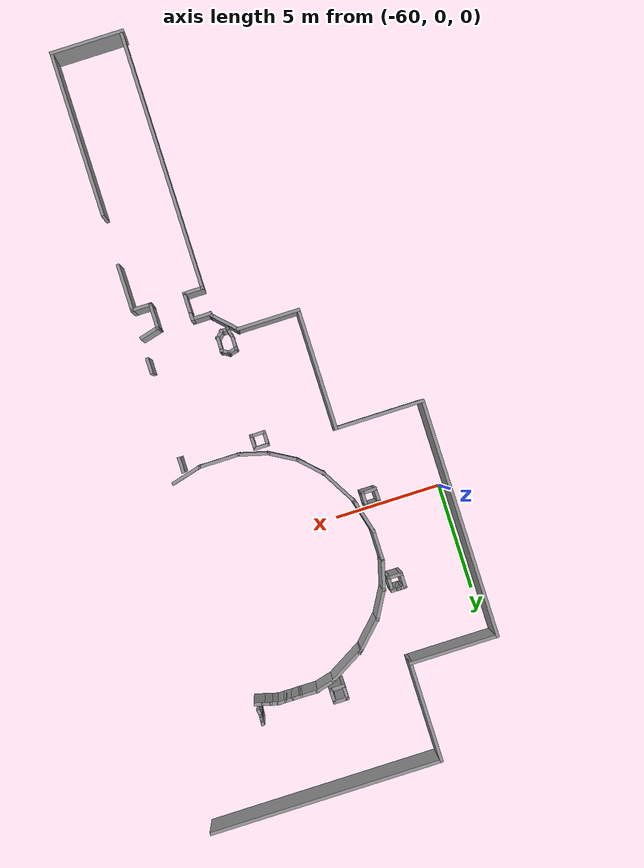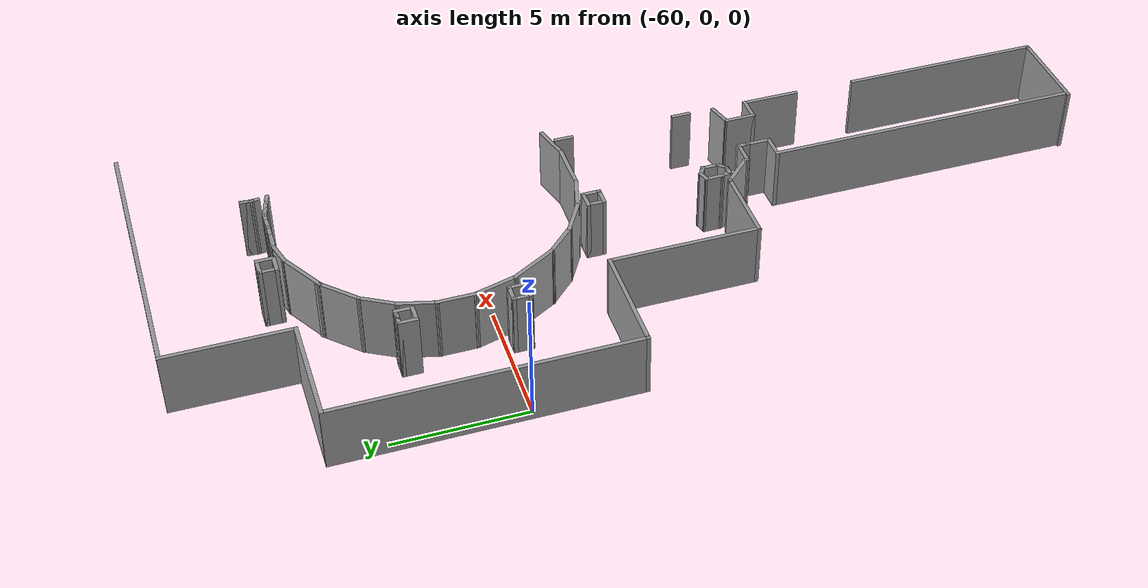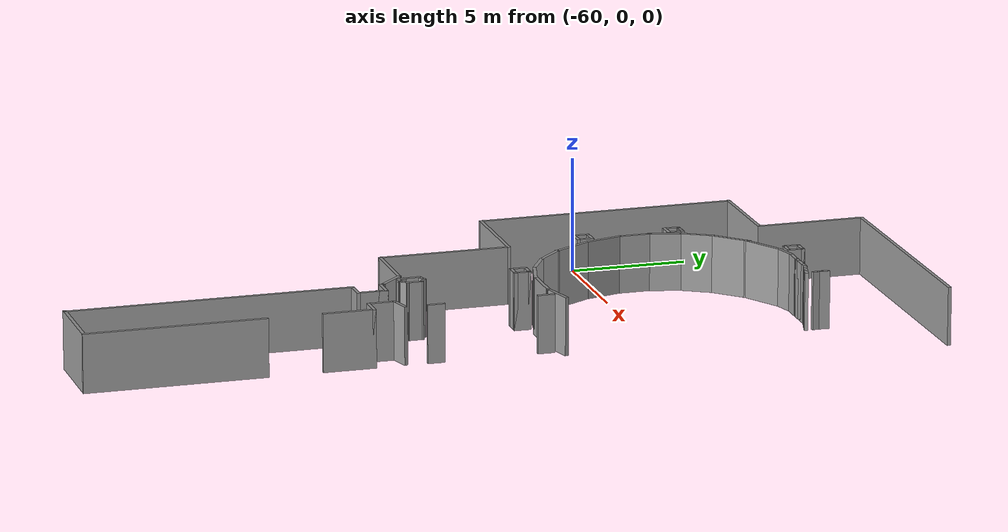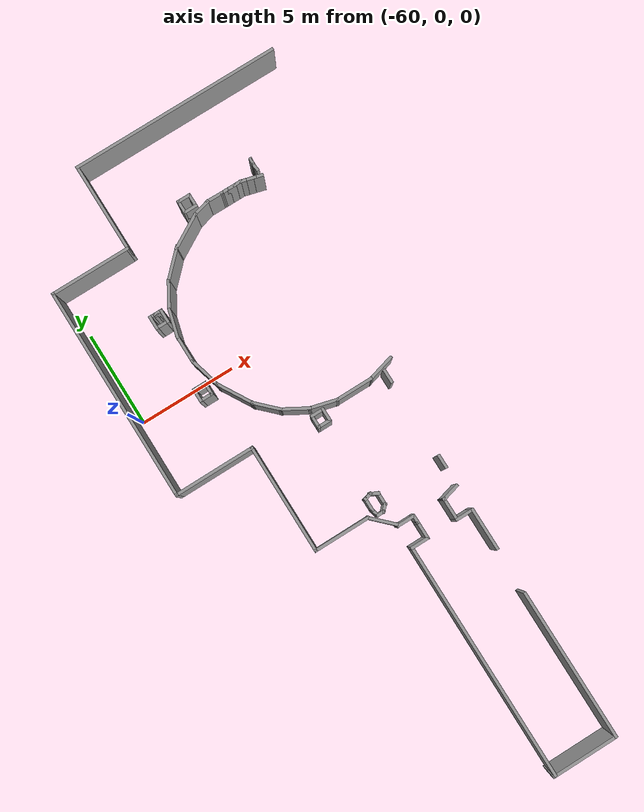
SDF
<sdf version="1.7">
 <model name="TD">
  <pose>-6.31602 -6.69767 0 0 -0 0</pose>
  <link name="Wall_126">
   <collision name="Wall_126_Collision">
    <geometry><box><size>1 0.15 2.5</size></box></geometry>
    <pose>0 0 1.25 0 -0 0</pose>
   </collision>
   <visual name="Wall_126_Visual">
    <pose>0 0 1.25 0 -0 0</pose>
    <geometry><box><size>1 0.15 2.5</size></box></geometry>
    <material>
     <script><uri>file://media/materials/scripts/gazebo.material</uri><name>Gazebo/Grey</name></script>
     <ambient>1 1 1 1</ambient>
    </material>
    <meta><layer>0</layer></meta>
   </visual>
   <pose>-43.1204 -5.15327 0 0 -0 3.14159</pose>
  </link>
  <link name="Wall_127">
   <collision name="Wall_127_Collision">
    <geometry><box><size>1.25 0.15 2.5</size></box></geometry>
    <pose>0 0 1.25 0 -0 0</pose>
   </collision>
   <visual name="Wall_127_Visual">
    <pose>0 0 1.25 0 -0 0</pose>
    <geometry><box><size>1.25 0.15 2.5</size></box></geometry>
    <material>
     <script><uri>file://media/materials/scripts/gazebo.material</uri><name>Gazebo/Grey</name></script>
     <ambient>1 1 1 1</ambient>
    </material>
    <meta><layer>0</layer></meta>
   </visual>
   <pose>-43.5454 -4.60327 0 0 -0 1.5708</pose>
  </link>
  <link name="Wall_139">
   <collision name="Wall_139_Collision">
    <geometry><box><size>1 0.15 2.5</size></box></geometry>
    <pose>0 0 1.25 0 -0 0</pose>
   </collision>
   <visual name="Wall_139_Visual">
    <pose>0 0 1.25 0 -0 0</pose>
    <geometry><box><size>1 0.15 2.5</size></box></geometry>
    <material>
     <script><uri>file://media/materials/scripts/gazebo.material</uri><name>Gazebo/Grey</name></script>
     <ambient>1 1 1 1</ambient>
    </material>
    <meta><layer>0</layer></meta>
   </visual>
   <pose>-43.1349 -3.94327 0 0 -0 0.261799</pose>
  </link>
  <link name="Wall_143">
   <collision name="Wall_143_Collision">
    <geometry><box><size>0.5 0.15 2.5</size></box></geometry>
    <pose>0 0 1.25 0 -0 0</pose>
   </collision>
   <visual name="Wall_143_Visual">
    <pose>0 0 1.25 0 -0 0</pose>
    <geometry><box><size>0.5 0.15 2.5</size></box></geometry>
    <material>
     <script><uri>file://media/materials/scripts/gazebo.material</uri><name>Gazebo/Grey</name></script>
     <ambient>1 1 1 1</ambient>
    </material>
    <meta><layer>0</layer></meta>
   </visual>
   <pose>-44.507 13.7137 0 0 -0 0</pose>
  </link>
  <link name="Wall_145">
   <collision name="Wall_145_Collision">
    <geometry><box><size>0.5 0.15 2.5</size></box></geometry>
    <pose>0 0 1.25 0 -0 0</pose>
   </collision>
   <visual name="Wall_145_Visual">
    <pose>0 0 1.25 0 -0 0</pose>
    <geometry><box><size>0.5 0.15 2.5</size></box></geometry>
    <material>
     <script><uri>file://media/materials/scripts/gazebo.material</uri><name>Gazebo/Grey</name></script>
     <ambient>1 1 1 1</ambient>
    </material>
    <meta><layer>0</layer></meta>
   </visual>
   <pose>-44.157 13.7137 0 0 -0 0</pose>
  </link>
  <link name="Wall_146">
   <collision name="Wall_146_Collision">
    <geometry><box><size>0.5 0.15 2.5</size></box></geometry>
    <pose>0 0 1.25 0 -0 0</pose>
   </collision>
   <visual name="Wall_146_Visual">
    <pose>0 0 1.25 0 -0 0</pose>
    <geometry><box><size>0.5 0.15 2.5</size></box></geometry>
    <material>
     <script><uri>file://media/materials/scripts/gazebo.material</uri><name>Gazebo/Grey</name></script>
     <ambient>1 1 1 1</ambient>
    </material>
    <meta><layer>0</layer></meta>
   </visual>
   <pose>-43.807 13.7137 0 0 -0 0</pose>
  </link>
  <link name="Wall_148">
   <collision name="Wall_148_Collision">
    <geometry><box><size>0.5 0.15 2.5</size></box></geometry>
    <pose>0 0 1.25 0 -0 0</pose>
   </collision>
   <visual name="Wall_148_Visual">
    <pose>0 0 1.25 0 -0 0</pose>
    <geometry><box><size>0.5 0.15 2.5</size></box></geometry>
    <material>
     <script><uri>file://media/materials/scripts/gazebo.material</uri><name>Gazebo/Grey</name></script>
     <ambient>1 1 1 1</ambient>
    </material>
    <meta><layer>0</layer></meta>
   </visual>
   <pose>-43.463 13.6685 0 0 -0 -0.261799</pose>
  </link>
  <link name="Wall_151">
   <collision name="Wall_151_Collision">
    <geometry><box><size>0.5 0.15 2.5</size></box></geometry>
    <pose>0 0 1.25 0 -0 0</pose>
   </collision>
   <visual name="Wall_151_Visual">
    <pose>0 0 1.25 0 -0 0</pose>
    <geometry><box><size>0.5 0.15 2.5</size></box></geometry>
    <material>
     <script><uri>file://media/materials/scripts/gazebo.material</uri><name>Gazebo/Grey</name></script>
     <ambient>1 1 1 1</ambient>
    </material>
    <meta><layer>0</layer></meta>
   </visual>
   <pose>-43.1249 13.5779 0 0 -0 -0.261799</pose>
  </link>
  <link name="Wall_152">
   <collision name="Wall_152_Collision">
    <geometry><box><size>0.5 0.15 2.5</size></box></geometry>
    <pose>0 0 1.25 0 -0 0</pose>
   </collision>
   <visual name="Wall_152_Visual">
    <pose>0 0 1.25 0 -0 0</pose>
    <geometry><box><size>0.5 0.15 2.5</size></box></geometry>
    <material>
     <script><uri>file://media/materials/scripts/gazebo.material</uri><name>Gazebo/Grey</name></script>
     <ambient>1 1 1 1</ambient>
    </material>
    <meta><layer>0</layer></meta>
   </visual>
   <pose>-42.7869 13.4873 0 0 -0 -0.261799</pose>
  </link>
  <link name="Wall_172">
   <collision name="Wall_172_Collision">
    <geometry><box><size>1.5 0.15 2.5</size></box></geometry>
    <pose>0 0 1.25 0 -0 0</pose>
   </collision>
   <visual name="Wall_172_Visual">
    <pose>0 0 1.25 0 -0 0</pose>
    <geometry><box><size>1.5 0.15 2.5</size></box></geometry>
    <material>
     <script><uri>file://media/materials/scripts/gazebo.material</uri><name>Gazebo/Grey</name></script>
     <ambient>1 1 1 1</ambient>
    </material>
    <meta><layer>0</layer></meta>
   </visual>
   <pose>-42.7755 2.67223 0 0 -0 -2.87979</pose>
  </link>
  <link name="Wall_173">
   <collision name="Wall_173_Collision">
    <geometry><box><size>2 0.15 2.5</size></box></geometry>
    <pose>0 0 1.25 0 -0 0</pose>
   </collision>
   <visual name="Wall_173_Visual">
    <pose>0 0 1.25 0 -0 0</pose>
    <geometry><box><size>2 0.15 2.5</size></box></geometry>
    <material>
     <script><uri>file://media/materials/scripts/gazebo.material</uri><name>Gazebo/Grey</name></script>
     <ambient>1 1 1 1</ambient>
    </material>
    <meta><layer>0</layer></meta>
   </visual>
   <pose>-44.3525 2.49753 0 0 -0 3.14159</pose>
  </link>
  <link name="Wall_174">
   <collision name="Wall_174_Collision">
    <geometry><box><size>1.5 0.15 2.5</size></box></geometry>
    <pose>0 0 1.25 0 -0 0</pose>
   </collision>
   <visual name="Wall_174_Visual">
    <pose>0 0 1.25 0 -0 0</pose>
    <geometry><box><size>1.5 0.15 2.5</size></box></geometry>
    <material>
     <script><uri>file://media/materials/scripts/gazebo.material</uri><name>Gazebo/Grey</name></script>
     <ambient>1 1 1 1</ambient>
    </material>
    <meta><layer>0</layer></meta>
   </visual>
   <pose>-45.9295 2.67223 0 0 -0 2.87979</pose>
  </link>
  <link name="Wall_175">
   <collision name="Wall_175_Collision">
    <geometry><box><size>1.5 0.15 2.5</size></box></geometry>
    <pose>0 0 1.25 0 -0 0</pose>
   </collision>
   <visual name="Wall_175_Visual">
    <pose>0 0 1.25 0 -0 0</pose>
    <geometry><box><size>1.5 0.15 2.5</size></box></geometry>
    <material>
     <script><uri>file://media/materials/scripts/gazebo.material</uri><name>Gazebo/Grey</name></script>
     <ambient>1 1 1 1</ambient>
    </material>
    <meta><layer>0</layer></meta>
   </visual>
   <pose>-47.1661 3.18443 0 0 -0 2.61799</pose>
  </link>
  <link name="Wall_176">
   <collision name="Wall_176_Collision">
    <geometry><box><size>1.5 0.15 2.5</size></box></geometry>
    <pose>0 0 1.25 0 -0 0</pose>
   </collision>
   <visual name="Wall_176_Visual">
    <pose>0 0 1.25 0 -0 0</pose>
    <geometry><box><size>1.5 0.15 2.5</size></box></geometry>
    <material>
     <script><uri>file://media/materials/scripts/gazebo.material</uri><name>Gazebo/Grey</name></script>
     <ambient>1 1 1 1</ambient>
    </material>
    <meta><layer>0</layer></meta>
   </visual>
   <pose>-48.228 3.99923 0 0 -0 2.35619</pose>
  </link>
  <link name="Wall_177">
   <collision name="Wall_177_Collision">
    <geometry><box><size>0.15 0.15 2.5</size></box></geometry>
    <pose>0 0 1.25 0 -0 0</pose>
   </collision>
   <visual name="Wall_177_Visual">
    <pose>0 0 1.25 0 -0 0</pose>
    <geometry><box><size>0.15 0.15 2.5</size></box></geometry>
    <material>
     <script><uri>file://media/materials/scripts/gazebo.material</uri><name>Gazebo/Grey</name></script>
     <ambient>1 1 1 1</ambient>
    </material>
    <meta><layer>0</layer></meta>
   </visual>
   <pose>-48.7053 4.47653 0 0 -0 0</pose>
  </link>
  <link name="Wall_179">
   <collision name="Wall_179_Collision">
    <geometry><box><size>2 0.15 2.5</size></box></geometry>
    <pose>0 0 1.25 0 -0 0</pose>
   </collision>
   <visual name="Wall_179_Visual">
    <pose>0 0 1.25 0 -0 0</pose>
    <geometry><box><size>2 0.15 2.5</size></box></geometry>
    <material>
     <script><uri>file://media/materials/scripts/gazebo.material</uri><name>Gazebo/Grey</name></script>
     <ambient>1 1 1 1</ambient>
    </material>
    <meta><layer>0</layer></meta>
   </visual>
   <pose>-49.1678 5.2776 0 0 -0 2.0944</pose>
  </link>
  <link name="Wall_184">
   <collision name="Wall_184_Collision">
    <geometry><box><size>1.75 0.15 2.5</size></box></geometry>
    <pose>0 0 1.25 0 -0 0</pose>
   </collision>
   <visual name="Wall_184_Visual">
    <pose>0 0 1.25 0 -0 0</pose>
    <geometry><box><size>1.75 0.15 2.5</size></box></geometry>
    <material>
     <script><uri>file://media/materials/scripts/gazebo.material</uri><name>Gazebo/Grey</name></script>
     <ambient>1 1 1 1</ambient>
    </material>
    <meta><layer>0</layer></meta>
   </visual>
   <pose>-49.8373 6.85142 0 0 -0 1.8326</pose>
  </link>
  <link name="Wall_187">
   <collision name="Wall_187_Collision">
    <geometry><box><size>1.5 0.15 2.5</size></box></geometry>
    <pose>0 0 1.25 0 -0 0</pose>
   </collision>
   <visual name="Wall_187_Visual">
    <pose>0 0 1.25 0 -0 0</pose>
    <geometry><box><size>1.5 0.15 2.5</size></box></geometry>
    <material>
     <script><uri>file://media/materials/scripts/gazebo.material</uri><name>Gazebo/Grey</name></script>
     <ambient>1 1 1 1</ambient>
    </material>
    <meta><layer>0</layer></meta>
   </visual>
   <pose>-50.0444 8.29916 0 0 -0 1.5708</pose>
  </link>
  <link name="Wall_188">
   <collision name="Wall_188_Collision">
    <geometry><box><size>1.5 0.15 2.5</size></box></geometry>
    <pose>0 0 1.25 0 -0 0</pose>
   </collision>
   <visual name="Wall_188_Visual">
    <pose>0 0 1.25 0 -0 0</pose>
    <geometry><box><size>1.5 0.15 2.5</size></box></geometry>
    <material>
     <script><uri>file://media/materials/scripts/gazebo.material</uri><name>Gazebo/Grey</name></script>
     <ambient>1 1 1 1</ambient>
    </material>
    <meta><layer>0</layer></meta>
   </visual>
   <pose>-49.8697 9.62616 0 0 -0 1.309</pose>
  </link>
  <link name="Wall_189">
   <collision name="Wall_189_Collision">
    <geometry><box><size>1.5 0.15 2.5</size></box></geometry>
    <pose>0 0 1.25 0 -0 0</pose>
   </collision>
   <visual name="Wall_189_Visual">
    <pose>0 0 1.25 0 -0 0</pose>
    <geometry><box><size>1.5 0.15 2.5</size></box></geometry>
    <material>
     <script><uri>file://media/materials/scripts/gazebo.material</uri><name>Gazebo/Grey</name></script>
     <ambient>1 1 1 1</ambient>
    </material>
    <meta><layer>0</layer></meta>
   </visual>
   <pose>-49.3575 10.8627 0 0 -0 1.0472</pose>
  </link>
  <link name="Wall_190">
   <collision name="Wall_190_Collision">
    <geometry><box><size>1.75 0.15 2.5</size></box></geometry>
    <pose>0 0 1.25 0 -0 0</pose>
   </collision>
   <visual name="Wall_190_Visual">
    <pose>0 0 1.25 0 -0 0</pose>
    <geometry><box><size>1.75 0.15 2.5</size></box></geometry>
    <material>
     <script><uri>file://media/materials/scripts/gazebo.material</uri><name>Gazebo/Grey</name></script>
     <ambient>1 1 1 1</ambient>
    </material>
    <meta><layer>0</layer></meta>
   </visual>
   <pose>-48.4543 12.013 0 0 -0 0.785398</pose>
  </link>
  <link name="Wall_191">
   <collision name="Wall_191_Collision">
    <geometry><box><size>0.25 0.15 2.5</size></box></geometry>
    <pose>0 0 1.25 0 -0 0</pose>
   </collision>
   <visual name="Wall_191_Visual">
    <pose>0 0 1.25 0 -0 0</pose>
    <geometry><box><size>0.25 0.15 2.5</size></box></geometry>
    <material>
     <script><uri>file://media/materials/scripts/gazebo.material</uri><name>Gazebo/Grey</name></script>
     <ambient>1 1 1 1</ambient>
    </material>
    <meta><layer>0</layer></meta>
   </visual>
   <pose>-47.8532 12.614 0 0 -0 0.785398</pose>
  </link>
  <link name="Wall_193">
   <collision name="Wall_193_Collision">
    <geometry><box><size>2 0.15 2.5</size></box></geometry>
    <pose>0 0 1.25 0 -0 0</pose>
   </collision>
   <visual name="Wall_193_Visual">
    <pose>0 0 1.25 0 -0 0</pose>
    <geometry><box><size>2 0.15 2.5</size></box></geometry>
    <material>
     <script><uri>file://media/materials/scripts/gazebo.material</uri><name>Gazebo/Grey</name></script>
     <ambient>1 1 1 1</ambient>
    </material>
    <meta><layer>0</layer></meta>
   </visual>
   <pose>-47.0875 13.0412 0 0 -0 0.523599</pose>
  </link>
  <link name="Wall_194">
   <collision name="Wall_194_Collision">
    <geometry><box><size>1 0.15 2.5</size></box></geometry>
    <pose>0 0 1.25 0 -0 0</pose>
   </collision>
   <visual name="Wall_194_Visual">
    <pose>0 0 1.25 0 -0 0</pose>
    <geometry><box><size>1 0.15 2.5</size></box></geometry>
    <material>
     <script><uri>file://media/materials/scripts/gazebo.material</uri><name>Gazebo/Grey</name></script>
     <ambient>1 1 1 1</ambient>
    </material>
    <meta><layer>0</layer></meta>
   </visual>
   <pose>-45.8759 13.6137 0 0 -0 0.261799</pose>
  </link>
  <link name="Wall_195">
   <collision name="Wall_195_Collision">
    <geometry><box><size>0.933434 0.15 2.5</size></box></geometry>
    <pose>0 0 1.25 0 -0 0</pose>
   </collision>
   <visual name="Wall_195_Visual">
    <pose>0 0 1.25 0 -0 0</pose>
    <geometry><box><size>0.933434 0.15 2.5</size></box></geometry>
    <material>
     <script><uri>file://media/materials/scripts/gazebo.material</uri><name>Gazebo/Grey</name></script>
     <ambient>1 1 1 1</ambient>
    </material>
    <meta><layer>0</layer></meta>
   </visual>
   <pose>-45.0737 13.7187 0 0 -0 -0.012646</pose>
  </link>
  <link name="Wall_196">
   <collision name="Wall_196_Collision">
    <geometry><box><size>0.5 0.15 2.5</size></box></geometry>
    <pose>0 0 1.25 0 -0 0</pose>
   </collision>
   <visual name="Wall_196_Visual">
    <pose>0 0 1.25 0 -0 0</pose>
    <geometry><box><size>0.5 0.15 2.5</size></box></geometry>
    <material>
     <script><uri>file://media/materials/scripts/gazebo.material</uri><name>Gazebo/Grey</name></script>
     <ambient>1 1 1 1</ambient>
    </material>
    <meta><layer>0</layer></meta>
   </visual>
   <pose>-44.507 13.7137 0 0 -0 0</pose>
  </link>
  <link name="Wall_198">
   <collision name="Wall_198_Collision">
    <geometry><box><size>0.25 0.15 2.5</size></box></geometry>
    <pose>0 0 1.25 0 -0 0</pose>
   </collision>
   <visual name="Wall_198_Visual">
    <pose>0 0 1.25 0 -0 0</pose>
    <geometry><box><size>0.25 0.15 2.5</size></box></geometry>
    <material>
     <script><uri>file://media/materials/scripts/gazebo.material</uri><name>Gazebo/Grey</name></script>
     <ambient>1 1 1 1</ambient>
    </material>
    <meta><layer>0</layer></meta>
   </visual>
   <pose>-50.3432 10.4349 0 0 -0 0</pose>
  </link>
  <link name="Wall_20">
   <collision name="Wall_20_Collision">
    <geometry><box><size>3.5 0.15 2.5</size></box></geometry>
    <pose>0 0 1.25 0 -0 0</pose>
   </collision>
   <visual name="Wall_20_Visual">
    <pose>0 0 1.25 0 -0 0</pose>
    <geometry><box><size>3.5 0.15 2.5</size></box></geometry>
    <material>
     <script><uri>file://media/materials/scripts/gazebo.material</uri><name>Gazebo/Grey</name></script>
     <ambient>1 1 1 1</ambient>
    </material>
    <meta><layer>0</layer></meta>
   </visual>
   <pose>-44.3999 -17.2776 0 0 -0 0</pose>
  </link>
  <link name="Wall_201">
   <collision name="Wall_201_Collision">
    <geometry><box><size>0.5 0.15 2.5</size></box></geometry>
    <pose>0 0 1.25 0 -0 0</pose>
   </collision>
   <visual name="Wall_201_Visual">
    <pose>0 0 1.25 0 -0 0</pose>
    <geometry><box><size>0.5 0.15 2.5</size></box></geometry>
    <material>
     <script><uri>file://media/materials/scripts/gazebo.material</uri><name>Gazebo/Grey</name></script>
     <ambient>1 1 1 1</ambient>
    </material>
    <meta><layer>0</layer></meta>
   </visual>
   <pose>-50.2182 10.4349 0 0 -0 0</pose>
  </link>
  <link name="Wall_203">
   <collision name="Wall_203_Collision">
    <geometry><box><size>0.75 0.15 2.5</size></box></geometry>
    <pose>0 0 1.25 0 -0 0</pose>
   </collision>
   <visual name="Wall_203_Visual">
    <pose>0 0 1.25 0 -0 0</pose>
    <geometry><box><size>0.75 0.15 2.5</size></box></geometry>
    <material>
     <script><uri>file://media/materials/scripts/gazebo.material</uri><name>Gazebo/Grey</name></script>
     <ambient>1 1 1 1</ambient>
    </material>
    <meta><layer>0</layer></meta>
   </visual>
   <pose>-50.0433 10.1349 0 0 -0 -1.5708</pose>
  </link>
  <link name="Wall_205">
   <collision name="Wall_205_Collision">
    <geometry><box><size>0.75 0.15 2.5</size></box></geometry>
    <pose>0 0 1.25 0 -0 0</pose>
   </collision>
   <visual name="Wall_205_Visual">
    <pose>0 0 1.25 0 -0 0</pose>
    <geometry><box><size>0.75 0.15 2.5</size></box></geometry>
    <material>
     <script><uri>file://media/materials/scripts/gazebo.material</uri><name>Gazebo/Grey</name></script>
     <ambient>1 1 1 1</ambient>
    </material>
    <meta><layer>0</layer></meta>
   </visual>
   <pose>-50.3432 9.83493 0 0 -0 3.14159</pose>
  </link>
  <link name="Wall_206">
   <collision name="Wall_206_Collision">
    <geometry><box><size>0.75 0.15 2.5</size></box></geometry>
    <pose>0 0 1.25 0 -0 0</pose>
   </collision>
   <visual name="Wall_206_Visual">
    <pose>0 0 1.25 0 -0 0</pose>
    <geometry><box><size>0.75 0.15 2.5</size></box></geometry>
    <material>
     <script><uri>file://media/materials/scripts/gazebo.material</uri><name>Gazebo/Grey</name></script>
     <ambient>1 1 1 1</ambient>
    </material>
    <meta><layer>0</layer></meta>
   </visual>
   <pose>-50.6433 10.1349 0 0 -0 1.5708</pose>
  </link>
  <link name="Wall_207">
   <collision name="Wall_207_Collision">
    <geometry><box><size>0.4 0.15 2.5</size></box></geometry>
    <pose>0 0 1.25 0 -0 0</pose>
   </collision>
   <visual name="Wall_207_Visual">
    <pose>0 0 1.25 0 -0 0</pose>
    <geometry><box><size>0.4 0.15 2.5</size></box></geometry>
    <material>
     <script><uri>file://media/materials/scripts/gazebo.material</uri><name>Gazebo/Grey</name></script>
     <ambient>1 1 1 1</ambient>
    </material>
    <meta><layer>0</layer></meta>
   </visual>
   <pose>-50.5183 10.4349 0 0 -0 0</pose>
  </link>
  <link name="Wall_208">
   <collision name="Wall_208_Collision">
    <geometry><box><size>0.16 0.15 2.5</size></box></geometry>
    <pose>0 0 1.25 0 -0 0</pose>
   </collision>
   <visual name="Wall_208_Visual">
    <pose>0 0 1.25 0 -0 0</pose>
    <geometry><box><size>0.16 0.15 2.5</size></box></geometry>
    <material>
     <script><uri>file://media/materials/scripts/gazebo.material</uri><name>Gazebo/Grey</name></script>
     <ambient>1 1 1 1</ambient>
    </material>
    <meta><layer>0</layer></meta>
   </visual>
   <pose>-50.3883 10.4349 0 0 -0 0</pose>
  </link>
  <link name="Wall_210">
   <collision name="Wall_210_Collision">
    <geometry><box><size>0.75 0.15 2.5</size></box></geometry>
    <pose>0 0 1.25 0 -0 0</pose>
   </collision>
   <visual name="Wall_210_Visual">
    <pose>0 0 1.25 0 -0 0</pose>
    <geometry><box><size>0.75 0.15 2.5</size></box></geometry>
    <material>
     <script><uri>file://media/materials/scripts/gazebo.material</uri><name>Gazebo/Grey</name></script>
     <ambient>1 1 1 1</ambient>
    </material>
    <meta><layer>0</layer></meta>
   </visual>
   <pose>-46.6256 -2.40991 0 0 -0 1.5708</pose>
  </link>
  <link name="Wall_211">
   <collision name="Wall_211_Collision">
    <geometry><box><size>0.5 0.15 2.5</size></box></geometry>
    <pose>0 0 1.25 0 -0 0</pose>
   </collision>
   <visual name="Wall_211_Visual">
    <pose>0 0 1.25 0 -0 0</pose>
    <geometry><box><size>0.5 0.15 2.5</size></box></geometry>
    <material>
     <script><uri>file://media/materials/scripts/gazebo.material</uri><name>Gazebo/Grey</name></script>
     <ambient>1 1 1 1</ambient>
    </material>
    <meta><layer>0</layer></meta>
   </visual>
   <pose>-46.4566 -2.06461 0 0 -0 0.261799</pose>
  </link>
  <link name="Wall_212">
   <collision name="Wall_212_Collision">
    <geometry><box><size>0.5 0.15 2.5</size></box></geometry>
    <pose>0 0 1.25 0 -0 0</pose>
   </collision>
   <visual name="Wall_212_Visual">
    <pose>0 0 1.25 0 -0 0</pose>
    <geometry><box><size>0.5 0.15 2.5</size></box></geometry>
    <material>
     <script><uri>file://media/materials/scripts/gazebo.material</uri><name>Gazebo/Grey</name></script>
     <ambient>1 1 1 1</ambient>
    </material>
    <meta><layer>0</layer></meta>
   </visual>
   <pose>-46.136 -2.10682 0 0 -0 -0.523599</pose>
  </link>
  <link name="Wall_214">
   <collision name="Wall_214_Collision">
    <geometry><box><size>0.75 0.15 2.5</size></box></geometry>
    <pose>0 0 1.25 0 -0 0</pose>
   </collision>
   <visual name="Wall_214_Visual">
    <pose>0 0 1.25 0 -0 0</pose>
    <geometry><box><size>0.75 0.15 2.5</size></box></geometry>
    <material>
     <script><uri>file://media/materials/scripts/gazebo.material</uri><name>Gazebo/Grey</name></script>
     <ambient>1 1 1 1</ambient>
    </material>
    <meta><layer>0</layer></meta>
   </visual>
   <pose>-45.9844 -2.49432 0 0 -0 -1.5708</pose>
  </link>
  <link name="Wall_215">
   <collision name="Wall_215_Collision">
    <geometry><box><size>0.5 0.15 2.5</size></box></geometry>
    <pose>0 0 1.25 0 -0 0</pose>
   </collision>
   <visual name="Wall_215_Visual">
    <pose>0 0 1.25 0 -0 0</pose>
    <geometry><box><size>0.5 0.15 2.5</size></box></geometry>
    <material>
     <script><uri>file://media/materials/scripts/gazebo.material</uri><name>Gazebo/Grey</name></script>
     <ambient>1 1 1 1</ambient>
    </material>
    <meta><layer>0</layer></meta>
   </visual>
   <pose>-46.1082 -2.91806 0 0 -0 -2.35619</pose>
  </link>
  <link name="Wall_216">
   <collision name="Wall_216_Collision">
    <geometry><box><size>0.15 0.15 2.5</size></box></geometry>
    <pose>0 0 1.25 0 -0 0</pose>
   </collision>
   <visual name="Wall_216_Visual">
    <pose>0 0 1.25 0 -0 0</pose>
    <geometry><box><size>0.15 0.15 2.5</size></box></geometry>
    <material>
     <script><uri>file://media/materials/scripts/gazebo.material</uri><name>Gazebo/Grey</name></script>
     <ambient>1 1 1 1</ambient>
    </material>
    <meta><layer>0</layer></meta>
   </visual>
   <pose>-46.2319 -3.04181 0 0 -0 0</pose>
  </link>
  <link name="Wall_218">
   <collision name="Wall_218_Collision">
    <geometry><box><size>0.5 0.15 2.5</size></box></geometry>
    <pose>0 0 1.25 0 -0 0</pose>
   </collision>
   <visual name="Wall_218_Visual">
    <pose>0 0 1.25 0 -0 0</pose>
    <geometry><box><size>0.5 0.15 2.5</size></box></geometry>
    <material>
     <script><uri>file://media/materials/scripts/gazebo.material</uri><name>Gazebo/Grey</name></script>
     <ambient>1 1 1 1</ambient>
    </material>
    <meta><layer>0</layer></meta>
   </visual>
   <pose>-46.5803 -2.87894 0 0 -0 -1.309</pose>
  </link>
  <link name="Wall_219">
   <collision name="Wall_219_Collision">
    <geometry><box><size>0.453172 0.15 2.5</size></box></geometry>
    <pose>0 0 1.25 0 -0 0</pose>
   </collision>
   <visual name="Wall_219_Visual">
    <pose>0 0 1.25 0 -0 0</pose>
    <geometry><box><size>0.453172 0.15 2.5</size></box></geometry>
    <material>
     <script><uri>file://media/materials/scripts/gazebo.material</uri><name>Gazebo/Grey</name></script>
     <ambient>1 1 1 1</ambient>
    </material>
    <meta><layer>0</layer></meta>
   </visual>
   <pose>-46.3835 -3.04489 0 0 -0 0.020364</pose>
  </link>
  <link name="Wall_221">
   <collision name="Wall_221_Collision">
    <geometry><box><size>0.75 0.15 2.5</size></box></geometry>
    <pose>0 0 1.25 0 -0 0</pose>
   </collision>
   <visual name="Wall_221_Visual">
    <pose>0 0 1.25 0 -0 0</pose>
    <geometry><box><size>0.75 0.15 2.5</size></box></geometry>
    <material>
     <script><uri>file://media/materials/scripts/gazebo.material</uri><name>Gazebo/Grey</name></script>
     <ambient>1 1 1 1</ambient>
    </material>
    <meta><layer>0</layer></meta>
   </visual>
   <pose>-42.6713 -2.53381 0 0 -0 -1.5708</pose>
  </link>
  <link name="Wall_23">
   <collision name="Wall_23_Collision">
    <geometry><box><size>12.25 0.15 2.5</size></box></geometry>
    <pose>0 0 1.25 0 -0 0</pose>
   </collision>
   <visual name="Wall_23_Visual">
    <pose>0 0 1.25 0 -0 0</pose>
    <geometry><box><size>12.25 0.15 2.5</size></box></geometry>
    <material>
     <script><uri>file://media/materials/scripts/gazebo.material</uri><name>Gazebo/Grey</name></script>
     <ambient>1 1 1 1</ambient>
    </material>
    <meta><layer>0</layer></meta>
   </visual>
   <pose>-46.0022 -11.2033 0 0 -0 -1.5708</pose>
  </link>
  <link name="Wall_230">
   <collision name="Wall_230_Collision">
    <geometry><box><size>0.75 0.15 2.5</size></box></geometry>
    <pose>0 0 1.25 0 -0 0</pose>
   </collision>
   <visual name="Wall_230_Visual">
    <pose>0 0 1.25 0 -0 0</pose>
    <geometry><box><size>0.75 0.15 2.5</size></box></geometry>
    <material>
     <script><uri>file://media/materials/scripts/gazebo.material</uri><name>Gazebo/Grey</name></script>
     <ambient>1 1 1 1</ambient>
    </material>
    <meta><layer>0</layer></meta>
   </visual>
   <pose>-50.3891 6.43349 0 0 -0 0</pose>
  </link>
  <link name="Wall_231">
   <collision name="Wall_231_Collision">
    <geometry><box><size>0.75 0.15 2.5</size></box></geometry>
    <pose>0 0 1.25 0 -0 0</pose>
   </collision>
   <visual name="Wall_231_Visual">
    <pose>0 0 1.25 0 -0 0</pose>
    <geometry><box><size>0.75 0.15 2.5</size></box></geometry>
    <material>
     <script><uri>file://media/materials/scripts/gazebo.material</uri><name>Gazebo/Grey</name></script>
     <ambient>1 1 1 1</ambient>
    </material>
    <meta><layer>0</layer></meta>
   </visual>
   <pose>-50.0891 6.13349 0 0 -0 -1.5708</pose>
  </link>
  <link name="Wall_232">
   <collision name="Wall_232_Collision">
    <geometry><box><size>0.75 0.15 2.5</size></box></geometry>
    <pose>0 0 1.25 0 -0 0</pose>
   </collision>
   <visual name="Wall_232_Visual">
    <pose>0 0 1.25 0 -0 0</pose>
    <geometry><box><size>0.75 0.15 2.5</size></box></geometry>
    <material>
     <script><uri>file://media/materials/scripts/gazebo.material</uri><name>Gazebo/Grey</name></script>
     <ambient>1 1 1 1</ambient>
    </material>
    <meta><layer>0</layer></meta>
   </visual>
   <pose>-50.3891 5.83349 0 0 -0 3.14159</pose>
  </link>
  <link name="Wall_233">
   <collision name="Wall_233_Collision">
    <geometry><box><size>0.75 0.15 2.5</size></box></geometry>
    <pose>0 0 1.25 0 -0 0</pose>
   </collision>
   <visual name="Wall_233_Visual">
    <pose>0 0 1.25 0 -0 0</pose>
    <geometry><box><size>0.75 0.15 2.5</size></box></geometry>
    <material>
     <script><uri>file://media/materials/scripts/gazebo.material</uri><name>Gazebo/Grey</name></script>
     <ambient>1 1 1 1</ambient>
    </material>
    <meta><layer>0</layer></meta>
   </visual>
   <pose>-50.6891 6.13349 0 0 -0 1.5708</pose>
  </link>
  <link name="Wall_234">
   <collision name="Wall_234_Collision">
    <geometry><box><size>0.16 0.15 2.5</size></box></geometry>
    <pose>0 0 1.25 0 -0 0</pose>
   </collision>
   <visual name="Wall_234_Visual">
    <pose>0 0 1.25 0 -0 0</pose>
    <geometry><box><size>0.16 0.15 2.5</size></box></geometry>
    <material>
     <script><uri>file://media/materials/scripts/gazebo.material</uri><name>Gazebo/Grey</name></script>
     <ambient>1 1 1 1</ambient>
    </material>
    <meta><layer>0</layer></meta>
   </visual>
   <pose>-50.6841 6.43349 0 0 -0 0</pose>
  </link>
  <link name="Wall_236">
   <collision name="Wall_236_Collision">
    <geometry><box><size>0.75 0.15 2.5</size></box></geometry>
    <pose>0 0 1.25 0 -0 0</pose>
   </collision>
   <visual name="Wall_236_Visual">
    <pose>0 0 1.25 0 -0 0</pose>
    <geometry><box><size>0.75 0.15 2.5</size></box></geometry>
    <material>
     <script><uri>file://media/materials/scripts/gazebo.material</uri><name>Gazebo/Grey</name></script>
     <ambient>1 1 1 1</ambient>
    </material>
    <meta><layer>0</layer></meta>
   </visual>
   <pose>-46.3425 14.4402 0 0 -0 0</pose>
  </link>
  <link name="Wall_237">
   <collision name="Wall_237_Collision">
    <geometry><box><size>0.75 0.15 2.5</size></box></geometry>
    <pose>0 0 1.25 0 -0 0</pose>
   </collision>
   <visual name="Wall_237_Visual">
    <pose>0 0 1.25 0 -0 0</pose>
    <geometry><box><size>0.75 0.15 2.5</size></box></geometry>
    <material>
     <script><uri>file://media/materials/scripts/gazebo.material</uri><name>Gazebo/Grey</name></script>
     <ambient>1 1 1 1</ambient>
    </material>
    <meta><layer>0</layer></meta>
   </visual>
   <pose>-46.0425 14.1402 0 0 -0 -1.5708</pose>
  </link>
  <link name="Wall_238">
   <collision name="Wall_238_Collision">
    <geometry><box><size>0.75 0.15 2.5</size></box></geometry>
    <pose>0 0 1.25 0 -0 0</pose>
   </collision>
   <visual name="Wall_238_Visual">
    <pose>0 0 1.25 0 -0 0</pose>
    <geometry><box><size>0.75 0.15 2.5</size></box></geometry>
    <material>
     <script><uri>file://media/materials/scripts/gazebo.material</uri><name>Gazebo/Grey</name></script>
     <ambient>1 1 1 1</ambient>
    </material>
    <meta><layer>0</layer></meta>
   </visual>
   <pose>-46.3425 13.8402 0 0 -0 3.14159</pose>
  </link>
  <link name="Wall_239">
   <collision name="Wall_239_Collision">
    <geometry><box><size>0.75 0.15 2.5</size></box></geometry>
    <pose>0 0 1.25 0 -0 0</pose>
   </collision>
   <visual name="Wall_239_Visual">
    <pose>0 0 1.25 0 -0 0</pose>
    <geometry><box><size>0.75 0.15 2.5</size></box></geometry>
    <material>
     <script><uri>file://media/materials/scripts/gazebo.material</uri><name>Gazebo/Grey</name></script>
     <ambient>1 1 1 1</ambient>
    </material>
    <meta><layer>0</layer></meta>
   </visual>
   <pose>-46.6425 14.1402 0 0 -0 1.5708</pose>
  </link>
  <link name="Wall_24">
   <collision name="Wall_24_Collision">
    <geometry><box><size>0.15 0.15 2.5</size></box></geometry>
    <pose>0 0 1.25 0 -0 0</pose>
   </collision>
   <visual name="Wall_24_Visual">
    <pose>0 0 1.25 0 -0 0</pose>
    <geometry><box><size>0.15 0.15 2.5</size></box></geometry>
    <material>
     <script><uri>file://media/materials/scripts/gazebo.material</uri><name>Gazebo/Grey</name></script>
     <ambient>1 1 1 1</ambient>
    </material>
    <meta><layer>0</layer></meta>
   </visual>
   <pose>-46.0022 -17.2533 0 0 -0 0</pose>
  </link>
  <link name="Wall_240">
   <collision name="Wall_240_Collision">
    <geometry><box><size>0.16 0.15 2.5</size></box></geometry>
    <pose>0 0 1.25 0 -0 0</pose>
   </collision>
   <visual name="Wall_240_Visual">
    <pose>0 0 1.25 0 -0 0</pose>
    <geometry><box><size>0.16 0.15 2.5</size></box></geometry>
    <material>
     <script><uri>file://media/materials/scripts/gazebo.material</uri><name>Gazebo/Grey</name></script>
     <ambient>1 1 1 1</ambient>
    </material>
    <meta><layer>0</layer></meta>
   </visual>
   <pose>-46.6375 14.4402 0 0 -0 0</pose>
  </link>
  <link name="Wall_250">
   <collision name="Wall_250_Collision">
    <geometry><box><size>0.370924 0.15 2.5</size></box></geometry>
    <pose>0 0 1.25 0 -0 0</pose>
   </collision>
   <visual name="Wall_250_Visual">
    <pose>0 0 1.25 0 -0 0</pose>
    <geometry><box><size>0.370924 0.15 2.5</size></box></geometry>
    <material>
     <script><uri>file://media/materials/scripts/gazebo.material</uri><name>Gazebo/Grey</name></script>
     <ambient>1 1 1 1</ambient>
    </material>
    <meta><layer>0</layer></meta>
   </visual>
   <pose>-42.6774 13.8981 0 0 -0 1.68232</pose>
  </link>
  <link name="Wall_251">
   <collision name="Wall_251_Collision">
    <geometry><box><size>0.531242 0.15 2.5</size></box></geometry>
    <pose>0 0 1.25 0 -0 0</pose>
   </collision>
   <visual name="Wall_251_Visual">
    <pose>0 0 1.25 0 -0 0</pose>
    <geometry><box><size>0.531242 0.15 2.5</size></box></geometry>
    <material>
     <script><uri>file://media/materials/scripts/gazebo.material</uri><name>Gazebo/Grey</name></script>
     <ambient>1 1 1 1</ambient>
    </material>
    <meta><layer>0</layer></meta>
   </visual>
   <pose>-42.6774 14.1981 0 0 -0 1.50626</pose>
  </link>
  <link name="Wall_252">
   <collision name="Wall_252_Collision">
    <geometry><box><size>0.531242 0.15 2.5</size></box></geometry>
    <pose>0 0 1.25 0 -0 0</pose>
   </collision>
   <visual name="Wall_252_Visual">
    <pose>0 0 1.25 0 -0 0</pose>
    <geometry><box><size>0.531242 0.15 2.5</size></box></geometry>
    <material>
     <script><uri>file://media/materials/scripts/gazebo.material</uri><name>Gazebo/Grey</name></script>
     <ambient>1 1 1 1</ambient>
    </material>
    <meta><layer>0</layer></meta>
   </visual>
   <pose>-42.6774 14.1981 0 0 -0 -1.63533</pose>
  </link>
  <link name="Wall_26">
   <collision name="Wall_26_Collision">
    <geometry><box><size>2.25 0.15 2.5</size></box></geometry>
    <pose>0 0 1.25 0 -0 0</pose>
   </collision>
   <visual name="Wall_26_Visual">
    <pose>0 0 1.25 0 -0 0</pose>
    <geometry><box><size>2.25 0.15 2.5</size></box></geometry>
    <material>
     <script><uri>file://media/materials/scripts/gazebo.material</uri><name>Gazebo/Grey</name></script>
     <ambient>1 1 1 1</ambient>
    </material>
    <meta><layer>0</layer></meta>
   </visual>
   <pose>-42.6954 -6.20327 0 0 -0 -1.5708</pose>
  </link>
  <link name="Wall_279">
   <collision name="Wall_279_Collision">
    <geometry><box><size>0.75 0.15 2.5</size></box></geometry>
    <pose>0 0 1.25 0 -0 0</pose>
   </collision>
   <visual name="Wall_279_Visual">
    <pose>0 0 1.25 0 -0 0</pose>
    <geometry><box><size>0.75 0.15 2.5</size></box></geometry>
    <material>
     <script><uri>file://media/materials/scripts/gazebo.material</uri><name>Gazebo/Grey</name></script>
     <ambient>1 1 1 1</ambient>
    </material>
    <meta><layer>0</layer></meta>
   </visual>
   <pose>-46.382 2.47266 0 0 -0 0</pose>
  </link>
  <link name="Wall_280">
   <collision name="Wall_280_Collision">
    <geometry><box><size>0.75 0.15 2.5</size></box></geometry>
    <pose>0 0 1.25 0 -0 0</pose>
   </collision>
   <visual name="Wall_280_Visual">
    <pose>0 0 1.25 0 -0 0</pose>
    <geometry><box><size>0.75 0.15 2.5</size></box></geometry>
    <material>
     <script><uri>file://media/materials/scripts/gazebo.material</uri><name>Gazebo/Grey</name></script>
     <ambient>1 1 1 1</ambient>
    </material>
    <meta><layer>0</layer></meta>
   </visual>
   <pose>-46.082 2.17266 0 0 -0 -1.5708</pose>
  </link>
  <link name="Wall_281">
   <collision name="Wall_281_Collision">
    <geometry><box><size>0.75 0.15 2.5</size></box></geometry>
    <pose>0 0 1.25 0 -0 0</pose>
   </collision>
   <visual name="Wall_281_Visual">
    <pose>0 0 1.25 0 -0 0</pose>
    <geometry><box><size>0.75 0.15 2.5</size></box></geometry>
    <material>
     <script><uri>file://media/materials/scripts/gazebo.material</uri><name>Gazebo/Grey</name></script>
     <ambient>1 1 1 1</ambient>
    </material>
    <meta><layer>0</layer></meta>
   </visual>
   <pose>-46.382 1.87266 0 0 -0 3.14159</pose>
  </link>
  <link name="Wall_282">
   <collision name="Wall_282_Collision">
    <geometry><box><size>0.75 0.15 2.5</size></box></geometry>
    <pose>0 0 1.25 0 -0 0</pose>
   </collision>
   <visual name="Wall_282_Visual">
    <pose>0 0 1.25 0 -0 0</pose>
    <geometry><box><size>0.75 0.15 2.5</size></box></geometry>
    <material>
     <script><uri>file://media/materials/scripts/gazebo.material</uri><name>Gazebo/Grey</name></script>
     <ambient>1 1 1 1</ambient>
    </material>
    <meta><layer>0</layer></meta>
   </visual>
   <pose>-46.682 2.17266 0 0 -0 1.5708</pose>
  </link>
  <link name="Wall_288">
   <collision name="Wall_288_Collision">
    <geometry><box><size>0.75 0.15 2.5</size></box></geometry>
    <pose>0 0 1.25 0 -0 0</pose>
   </collision>
   <visual name="Wall_288_Visual">
    <pose>0 0 1.25 0 -0 0</pose>
    <geometry><box><size>0.75 0.15 2.5</size></box></geometry>
    <material>
     <script><uri>file://media/materials/scripts/gazebo.material</uri><name>Gazebo/Grey</name></script>
     <ambient>1 1 1 1</ambient>
    </material>
    <meta><layer>0</layer></meta>
   </visual>
   <pose>-42.6832 2.16715 0 0 -0 -1.5708</pose>
  </link>
  <link name="Wall_31">
   <collision name="Wall_31_Collision">
    <geometry><box><size>7.75 0.15 2.5</size></box></geometry>
    <pose>0 0 1.25 0 -0 0</pose>
   </collision>
   <visual name="Wall_31_Visual">
    <pose>0 0 1.25 0 -0 0</pose>
    <geometry><box><size>7.75 0.15 2.5</size></box></geometry>
    <material>
     <script><uri>file://media/materials/scripts/gazebo.material</uri><name>Gazebo/Grey</name></script>
     <ambient>1 1 1 1</ambient>
    </material>
    <meta><layer>0</layer></meta>
   </visual>
   <pose>-42.7249 -13.4776 0 0 -0 1.5708</pose>
  </link>
  <link name="Wall_40">
   <collision name="Wall_40_Collision">
    <geometry><box><size>1 0.15 2.5</size></box></geometry>
    <pose>0 0 1.25 0 -0 0</pose>
   </collision>
   <visual name="Wall_40_Visual">
    <pose>0 0 1.25 0 -0 0</pose>
    <geometry><box><size>1 0.15 2.5</size></box></geometry>
    <material>
     <script><uri>file://media/materials/scripts/gazebo.material</uri><name>Gazebo/Grey</name></script>
     <ambient>1 1 1 1</ambient>
    </material>
    <meta><layer>0</layer></meta>
   </visual>
   <pose>-45.5772 -5.15327 0 0 -0 0</pose>
  </link>
  <link name="Wall_41">
   <collision name="Wall_41_Collision">
    <geometry><box><size>1 0.15 2.5</size></box></geometry>
    <pose>0 0 1.25 0 -0 0</pose>
   </collision>
   <visual name="Wall_41_Visual">
    <pose>0 0 1.25 0 -0 0</pose>
    <geometry><box><size>1 0.15 2.5</size></box></geometry>
    <material>
     <script><uri>file://media/materials/scripts/gazebo.material</uri><name>Gazebo/Grey</name></script>
     <ambient>1 1 1 1</ambient>
    </material>
    <meta><layer>0</layer></meta>
   </visual>
   <pose>-45.1522 -4.72827 0 0 -0 1.5708</pose>
  </link>
  <link name="Wall_43">
   <collision name="Wall_43_Collision">
    <geometry><box><size>0.5 0.15 2.5</size></box></geometry>
    <pose>0 0 1.25 0 -0 0</pose>
   </collision>
   <visual name="Wall_43_Visual">
    <pose>0 0 1.25 0 -0 0</pose>
    <geometry><box><size>0.5 0.15 2.5</size></box></geometry>
    <material>
     <script><uri>file://media/materials/scripts/gazebo.material</uri><name>Gazebo/Grey</name></script>
     <ambient>1 1 1 1</ambient>
    </material>
    <meta><layer>0</layer></meta>
   </visual>
   <pose>-45.1522 -4.12827 0 0 -0 1.5708</pose>
  </link>
  <link name="Wall_45">
   <collision name="Wall_45_Collision">
    <geometry><box><size>1 0.15 2.5</size></box></geometry>
    <pose>0 0 1.25 0 -0 0</pose>
   </collision>
   <visual name="Wall_45_Visual">
    <pose>0 0 1.25 0 -0 0</pose>
    <geometry><box><size>1 0.15 2.5</size></box></geometry>
    <material>
     <script><uri>file://media/materials/scripts/gazebo.material</uri><name>Gazebo/Grey</name></script>
     <ambient>1 1 1 1</ambient>
    </material>
    <meta><layer>0</layer></meta>
   </visual>
   <pose>-45.5772 -3.95327 0 0 -0 3.14159</pose>
  </link>
  <link name="Wall_46">
   <collision name="Wall_46_Collision">
    <geometry><box><size>0.25 0.15 2.5</size></box></geometry>
    <pose>0 0 1.25 0 -0 0</pose>
   </collision>
   <visual name="Wall_46_Visual">
    <pose>0 0 1.25 0 -0 0</pose>
    <geometry><box><size>0.25 0.15 2.5</size></box></geometry>
    <material>
     <script><uri>file://media/materials/scripts/gazebo.material</uri><name>Gazebo/Grey</name></script>
     <ambient>1 1 1 1</ambient>
    </material>
    <meta><layer>0</layer></meta>
   </visual>
   <pose>-46.0152 -3.90497 0 0 -0 1.8326</pose>
  </link>
  <link name="Wall_47">
   <collision name="Wall_47_Collision">
    <geometry><box><size>1.5 0.15 2.5</size></box></geometry>
    <pose>0 0 1.25 0 -0 0</pose>
   </collision>
   <visual name="Wall_47_Visual">
    <pose>0 0 1.25 0 -0 0</pose>
    <geometry><box><size>1.5 0.15 2.5</size></box></geometry>
    <material>
     <script><uri>file://media/materials/scripts/gazebo.material</uri><name>Gazebo/Grey</name></script>
     <ambient>1 1 1 1</ambient>
    </material>
    <meta><layer>0</layer></meta>
   </visual>
   <pose>-46.5054 -3.37938 0 0 -0 2.35619</pose>
  </link>
  <link name="Wall_49">
   <collision name="Wall_49_Collision">
    <geometry><box><size>3 0.15 2.5</size></box></geometry>
    <pose>0 0 1.25 0 -0 0</pose>
   </collision>
   <visual name="Wall_49_Visual">
    <pose>0 0 1.25 0 -0 0</pose>
    <geometry><box><size>3 0.15 2.5</size></box></geometry>
    <material>
     <script><uri>file://media/materials/scripts/gazebo.material</uri><name>Gazebo/Grey</name></script>
     <ambient>1 1 1 1</ambient>
    </material>
    <meta><layer>0</layer></meta>
   </visual>
   <pose>-48.4077 -2.90208 0 0 -0 3.14159</pose>
  </link>
  <link name="Wall_50">
   <collision name="Wall_50_Collision">
    <geometry><box><size>5.75 0.15 2.5</size></box></geometry>
    <pose>0 0 1.25 0 -0 0</pose>
   </collision>
   <visual name="Wall_50_Visual">
    <pose>0 0 1.25 0 -0 0</pose>
    <geometry><box><size>5.75 0.15 2.5</size></box></geometry>
    <material>
     <script><uri>file://media/materials/scripts/gazebo.material</uri><name>Gazebo/Grey</name></script>
     <ambient>1 1 1 1</ambient>
    </material>
    <meta><layer>0</layer></meta>
   </visual>
   <pose>-49.8327 -0.102082 0 0 -0 1.5708</pose>
  </link>
  <link name="Wall_52">
   <collision name="Wall_52_Collision">
    <geometry><box><size>4.25 0.15 2.5</size></box></geometry>
    <pose>0 0 1.25 0 -0 0</pose>
   </collision>
   <visual name="Wall_52_Visual">
    <pose>0 0 1.25 0 -0 0</pose>
    <geometry><box><size>4.25 0.15 2.5</size></box></geometry>
    <material>
     <script><uri>file://media/materials/scripts/gazebo.material</uri><name>Gazebo/Grey</name></script>
     <ambient>1 1 1 1</ambient>
    </material>
    <meta><layer>0</layer></meta>
   </visual>
   <pose>-51.8827 2.69792 0 0 -0 3.14159</pose>
  </link>
  <link name="Wall_63">
   <collision name="Wall_63_Collision">
    <geometry><box><size>11.25 0.15 2.5</size></box></geometry>
    <pose>0 0 1.25 0 -0 0</pose>
   </collision>
   <visual name="Wall_63_Visual">
    <pose>0 0 1.25 0 -0 0</pose>
    <geometry><box><size>11.25 0.15 2.5</size></box></geometry>
    <material>
     <script><uri>file://media/materials/scripts/gazebo.material</uri><name>Gazebo/Grey</name></script>
     <ambient>1 1 1 1</ambient>
    </material>
    <meta><layer>0</layer></meta>
   </visual>
   <pose>-53.9327 8.24792 0 0 -0 1.5708</pose>
  </link>
  <link name="Wall_64">
   <collision name="Wall_64_Collision">
    <geometry><box><size>4.25 0.15 2.5</size></box></geometry>
    <pose>0 0 1.25 0 -0 0</pose>
   </collision>
   <visual name="Wall_64_Visual">
    <pose>0 0 1.25 0 -0 0</pose>
    <geometry><box><size>4.25 0.15 2.5</size></box></geometry>
    <material>
     <script><uri>file://media/materials/scripts/gazebo.material</uri><name>Gazebo/Grey</name></script>
     <ambient>1 1 1 1</ambient>
    </material>
    <meta><layer>0</layer></meta>
   </visual>
   <pose>-51.8827 13.7979 0 0 -0 0</pose>
  </link>
  <link name="Wall_65">
   <collision name="Wall_65_Collision">
    <geometry><box><size>4.75 0.15 2.5</size></box></geometry>
    <pose>0 0 1.25 0 -0 0</pose>
   </collision>
   <visual name="Wall_65_Visual">
    <pose>0 0 1.25 0 -0 0</pose>
    <geometry><box><size>4.75 0.15 2.5</size></box></geometry>
    <material>
     <script><uri>file://media/materials/scripts/gazebo.material</uri><name>Gazebo/Grey</name></script>
     <ambient>1 1 1 1</ambient>
    </material>
    <meta><layer>0</layer></meta>
   </visual>
   <pose>-49.8327 16.0979 0 0 -0 1.5708</pose>
  </link>
  <link name="Wall_66">
   <collision name="Wall_66_Collision">
    <geometry><box><size>11 0.15 2.5</size></box></geometry>
    <pose>0 0 1.25 0 -0 0</pose>
   </collision>
   <visual name="Wall_66_Visual">
    <pose>0 0 1.25 0 -0 0</pose>
    <geometry><box><size>11 0.15 2.5</size></box></geometry>
    <material>
     <script><uri>file://media/materials/scripts/gazebo.material</uri><name>Gazebo/Grey</name></script>
     <ambient>1 1 1 1</ambient>
    </material>
    <meta><layer>0</layer></meta>
   </visual>
   <pose>-44.4077 18.3979 0 0 -0 0</pose>
  </link>
  <static>1</static>
 </model>
</sdf>
